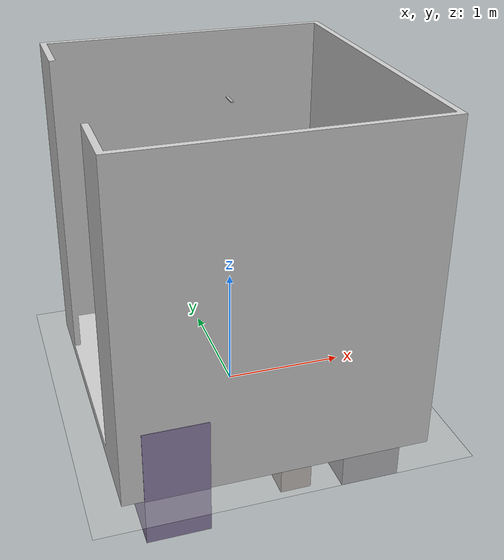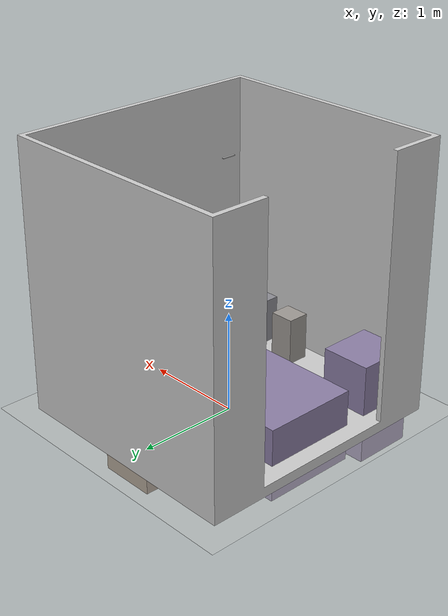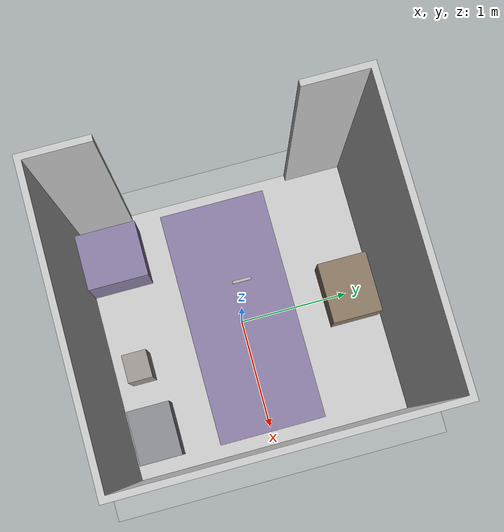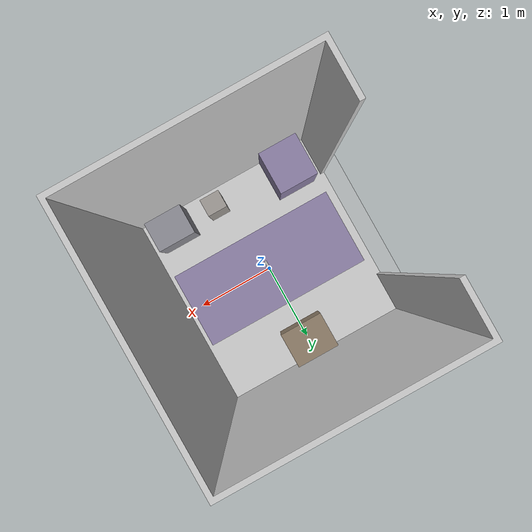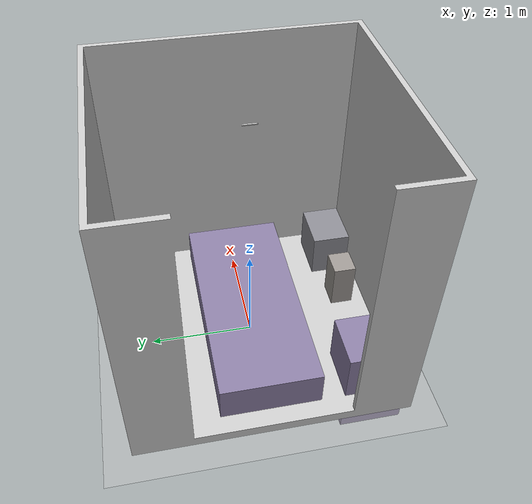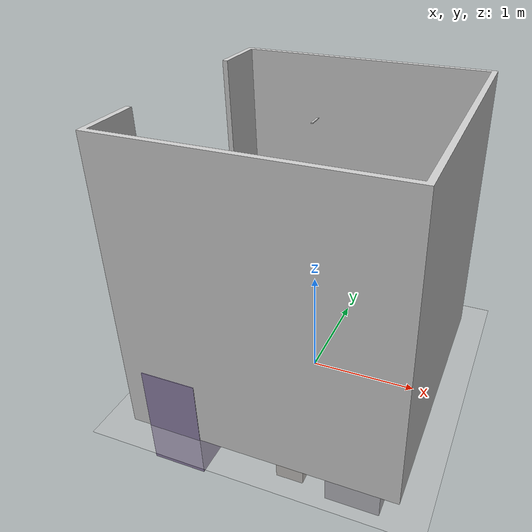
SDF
<?xml version="1.0" ?>
<!--
  Demo world with a widget displaying images coming from a camera sensor.
-->
<sdf version="1.6">
  <world name="camera_sensor">
    <physics name="1ms" type="ignored">
      <max_step_size>0.001</max_step_size>
      <real_time_factor>1.0</real_time_factor>
    </physics>
    <plugin
      filename="ignition-gazebo-physics-system"
      name="gz::sim::systems::Physics">
    </plugin>
    <plugin
      filename="ignition-gazebo-sensors-system"
      name="gz::sim::systems::Sensors">
      <render_engine>ogre</render_engine>
    </plugin>
    <plugin
      filename="ignition-gazebo-user-commands-system"
      name="gz::sim::systems::UserCommands">
    </plugin>
    <plugin
      filename="ignition-gazebo-scene-broadcaster-system"
      name="gz::sim::systems::SceneBroadcaster">
    </plugin>

    <scene>
      <ambient>1.0 1.0 1.0</ambient>
      <background>0.8 0.8 0.8</background>
      <grid>true</grid>
    </scene>

    <gui fullscreen="0">

      <!-- 3D scene -->
      <plugin filename="MinimalScene" name="3D View">
        <ignition-gui>
          <title>3D View</title>
          <property type="bool" key="showTitleBar">false</property>
          <property type="string" key="state">docked</property>
        </ignition-gui>

        <engine>ogre2</engine>
        <scene>scene</scene>
        <ambient_light>0.4 0.4 0.4</ambient_light>
        <background_color>0.8 0.8 0.8</background_color>
        <camera_pose>-6 0 6 0 0.5 0</camera_pose>
      </plugin>

      <!-- Plugins that add functionality to the scene -->
      <plugin filename="EntityContextMenuPlugin" name="Entity context menu">
        <ignition-gui>
          <property key="state" type="string">floating</property>
          <property key="width" type="double">5</property>
          <property key="height" type="double">5</property>
          <property key="showTitleBar" type="bool">false</property>
        </ignition-gui>
      </plugin>
      <plugin filename="GzSceneManager" name="Scene Manager">
        <ignition-gui>
          <property key="resizable" type="bool">false</property>
          <property key="width" type="double">5</property>
          <property key="height" type="double">5</property>
          <property key="state" type="string">floating</property>
          <property key="showTitleBar" type="bool">false</property>
        </ignition-gui>
      </plugin>
      <plugin filename="InteractiveViewControl" name="Interactive view control">
        <ignition-gui>
          <property key="resizable" type="bool">false</property>
          <property key="width" type="double">5</property>
          <property key="height" type="double">5</property>
          <property key="state" type="string">floating</property>
          <property key="showTitleBar" type="bool">false</property>
        </ignition-gui>
      </plugin>
      <plugin filename="CameraTracking" name="Camera Tracking">
        <ignition-gui>
          <property key="resizable" type="bool">false</property>
          <property key="width" type="double">5</property>
          <property key="height" type="double">5</property>
          <property key="state" type="string">floating</property>
          <property key="showTitleBar" type="bool">false</property>
        </ignition-gui>
      </plugin>
      <!-- World control -->
      <plugin filename="WorldControl" name="World control">
        <ignition-gui>
          <title>World control</title>
          <property type="bool" key="showTitleBar">false</property>
          <property type="bool" key="resizable">false</property>
          <property type="double" key="height">72</property>
          <property type="double" key="width">121</property>
          <property type="double" key="z">1</property>

          <property type="string" key="state">floating</property>
          <anchors target="3D View">
            <line own="left" target="left"/>
            <line own="bottom" target="bottom"/>
          </anchors>
        </ignition-gui>

        <play_pause>true</play_pause>
        <step>true</step>
        <start_paused>true</start_paused>
        <use_event>true</use_event>

      </plugin>

      <!-- World statistics -->
      <plugin filename="WorldStats" name="World stats">
        <ignition-gui>
          <title>World stats</title>
          <property type="bool" key="showTitleBar">false</property>
          <property type="bool" key="resizable">false</property>
          <property type="double" key="height">110</property>
          <property type="double" key="width">290</property>
          <property type="double" key="z">1</property>

          <property type="string" key="state">floating</property>
          <anchors target="3D View">
            <line own="right" target="right"/>
            <line own="bottom" target="bottom"/>
          </anchors>
        </ignition-gui>

        <sim_time>true</sim_time>
        <real_time>true</real_time>
        <real_time_factor>true</real_time_factor>
        <iterations>true</iterations>
      </plugin>

      <plugin filename="ImageDisplay" name="Image Display 3">
        <ignition-gui>
          <title>RGBD: image</title>
          <property key="state" type="string">floating</property>
          <property type="double" key="width">350</property>
          <property type="double" key="height">315</property>
          <property type="double" key="y">40</property>
        </ignition-gui>
        <topic>rgbd_camera/image</topic>
        <topic_picker>false</topic_picker>
      </plugin>

      <plugin filename="ImageDisplay" name="Image Display 3">
        <ignition-gui>
          <title>RGBD: depth</title>
          <property key="state" type="string">floating</property>
          <property type="double" key="width">350</property>
          <property type="double" key="height">315</property>
          <property type="double" key="y">500</property>
        </ignition-gui>
        <topic>rgbd_camera/depth_image</topic>
        <topic_picker>false</topic_picker>
      </plugin>

      <!-- Inspector -->
      <plugin filename="ComponentInspector" name="Component inspector">
        <ignition-gui>
          <property type="string" key="state">docked</property>
        </ignition-gui>
      </plugin>

      <!-- Entity tree -->
      <plugin filename="EntityTree" name="Entity tree">
        <ignition-gui>
          <property type="string" key="state">docked</property>
        </ignition-gui>
      </plugin>
    </gui>

    <light type="directional" name="sun">
      <cast_shadows>true</cast_shadows>
      <pose>0 0 10 0 0 0</pose>
      <diffuse>0.8 0.8 0.8 1</diffuse>
      <specular>0.8 0.8 0.8 1</specular>
      <attenuation>
        <range>1000</range>
        <constant>0.9</constant>
        <linear>0.01</linear>
        <quadratic>0.001</quadratic>
      </attenuation>
      <direction>-0.5 0.1 -0.9</direction>
    </light>

    <model name="ground_plane">
      <static>true</static>
      <link name="link">
        <collision name="collision">
          <geometry>
            <plane>
              <normal>0 0 1</normal>
              <size>100 100</size>
            </plane>
          </geometry>
        </collision>
        <visual name="visual">
          <geometry>
            <plane>
              <normal>0 0 1</normal>
              <size>100 100</size>
            </plane>
          </geometry>
          <material>
            <ambient>0.8 0.8 0.8 1</ambient>
            <diffuse>0.8 0.8 0.8 1</diffuse>
            <specular>0.8 0.8 0.8 1</specular>
          </material>
        </visual>
      </link>
    </model>

    <model name="ExameRoom">
      <static>true</static>
          <link name="body">
          <pose>0 0 0.1016 0 0 3.1415926535897932</pose>

          <visual name="visual">
              <geometry>
              <mesh>
                  <uri>files://meshes/exam_room/room.dae</uri>
              </mesh>
              </geometry>

              <material>
              <ambient>0.4 0.4 0.4 1</ambient>
              <diffuse>0.8 0.8 0.8 1</diffuse>
              <specular>0.8 0.8 0.8 1</specular>
          </material>
          </visual>

          <collision name="collision">
              <geometry>
              <mesh>
                  <uri>files://meshes/exam_room/room.dae</uri>
              </mesh>
              </geometry>
          </collision>

          </link>
      </model>

  <!--TrolleyBedPatient-->

    <include>
        <static> true </static>
        <pose>0 0 0.1016 0 0 3.1415926535897932</pose>
        <uri>
        https://fuel.gazebosim.org/1.0/OpenRobotics/models/TrolleyBedPatient
        </uri>
    </include>

    <include>
        <static>true</static>
        <pose>-0.8 -1.0 0.1016 0 0 1.5707963267948966</pose>
        <uri>
        https://fuel.gazebosim.org/1.0/OpenRobotics/models/Scrubs
        </uri>
    </include>

    <include>
        <static> true </static>
        <pose>0.8 -1 0.1016 0 0 3.1415926535897932</pose>
        <uri>
        https://fuel.gazebosim.org/1.0/OpenRobotics/models/BPCart
        </uri>
    </include>

    <include>
        <static> true </static>
        <pose>0.2 -1 0.1016 0 0 3.1415926535897932</pose>
        <uri>
        https://fuel.gazebosim.org/1.0/OpenRobotics/models/BloodPressureMonitor
        </uri>
    </include>

    <include>
        <static> true </static>
        <pose>0 1.0 0.1016 0 0 0</pose>
        <uri>
        https://fuel.gazebosim.org/1.0/OpenRobotics/models/BedsideTable
        </uri>
    </include>

    <model name="rgbd_camera">
      <static> true </static>
      <pose>0 0 2.5 0.0 1.5707963267948966 0</pose>
      <link name="link">
        <pose>0 0 0 0 0 0</pose>
        <inertial>
          <mass>0.0615752</mass>
          <inertia>
            <ixx>9.108e-05</ixx>
            <iyy>2.51e-06</iyy>
            <izz>8.931e-05</izz>
          </inertia>
        </inertial>
        <collision name="collision">
          <geometry>
            <box>
              <size>0.0078 0.130 0.0192</size>
            </box>
          </geometry>
        </collision>
        <visual name="visual">
          <geometry>
            <box>
              <size>0.0078 0.130 0.0192</size>
            </box>
          </geometry>
        </visual>
        <sensor name="rgbd_camera" type="rgbd_camera">
          <pose>0 0 0 0 0 0</pose>
          <camera>
            <clip>
              <near>0.1</near>
              <far>100</far>
            </clip>
             <noise>
              <type>gaussian</type>
              <mean>0.0</mean>
              <stddev>0.007</stddev>
            </noise>
          </camera>
          <always_on>1</always_on>
          <update_rate>60</update_rate>
          <visualize>true</visualize>
          <topic>rgbd_camera</topic>
          <enable_metrics>true</enable_metrics>
        </sensor>
      </link>
    </model>

  </world>
</sdf>

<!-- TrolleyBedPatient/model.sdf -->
<sdf version="1.6">
  <model name="TrolleyBedPatient">
    <static>true</static>
    <link name="link">
      <collision name="col">
        <geometry>
          <box>
            <size>2.1 0.95 0.72</size>
          </box>
        </geometry>
      </collision>
      <visual name="vis">
        <geometry>
          <box>
            <size>2.1 0.95 0.72</size>
          </box>
        </geometry>
        <material>
          <ambient>0.55 0.5 0.65 1</ambient>
          <diffuse>0.55 0.5 0.65 1</diffuse>
        </material>
      </visual>
    </link>
  </model>
</sdf>

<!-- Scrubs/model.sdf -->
<sdf version="1.6">
  <model name="Scrubs">
    <static>true</static>
    <link name="link">
      <collision name="col">
        <geometry>
          <box>
            <size>0.6 0.5 1.0</size>
          </box>
        </geometry>
      </collision>
      <visual name="vis">
        <geometry>
          <box>
            <size>0.6 0.5 1.0</size>
          </box>
        </geometry>
        <material>
          <ambient>0.55 0.5 0.65 1</ambient>
          <diffuse>0.55 0.5 0.65 1</diffuse>
        </material>
      </visual>
    </link>
  </model>
</sdf>

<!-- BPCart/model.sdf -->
<sdf version="1.6">
  <model name="BPCart">
    <static>true</static>
    <link name="link">
      <collision name="col">
        <geometry>
          <box>
            <size>0.48 0.38 0.92</size>
          </box>
        </geometry>
      </collision>
      <visual name="vis">
        <geometry>
          <box>
            <size>0.48 0.38 0.92</size>
          </box>
        </geometry>
        <material>
          <ambient>0.55 0.55 0.58 1</ambient>
          <diffuse>0.55 0.55 0.58 1</diffuse>
        </material>
      </visual>
    </link>
  </model>
</sdf>

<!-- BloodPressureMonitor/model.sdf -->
<sdf version="1.6">
  <model name="BloodPressureMonitor">
    <static>true</static>
    <link name="link">
      <collision name="col">
        <geometry>
          <box>
            <size>0.25 0.22 0.95</size>
          </box>
        </geometry>
      </collision>
      <visual name="vis">
        <geometry>
          <box>
            <size>0.25 0.22 0.95</size>
          </box>
        </geometry>
        <material>
          <ambient>0.62 0.6 0.58 1</ambient>
          <diffuse>0.62 0.6 0.58 1</diffuse>
        </material>
      </visual>
    </link>
  </model>
</sdf>

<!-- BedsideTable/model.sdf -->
<sdf version="1.6">
  <model name="BedsideTable">
    <static>true</static>
    <link name="link">
      <collision name="col">
        <geometry>
          <box>
            <size>0.55 0.45 0.65</size>
          </box>
        </geometry>
      </collision>
      <visual name="vis">
        <geometry>
          <box>
            <size>0.55 0.45 0.65</size>
          </box>
        </geometry>
        <material>
          <ambient>0.55 0.48 0.4 1</ambient>
          <diffuse>0.55 0.48 0.4 1</diffuse>
        </material>
      </visual>
    </link>
  </model>
</sdf>
